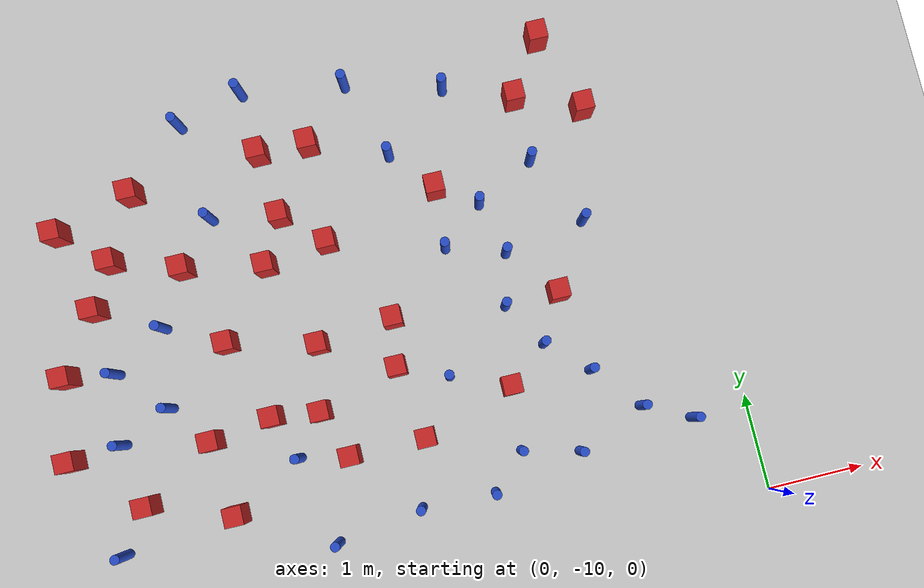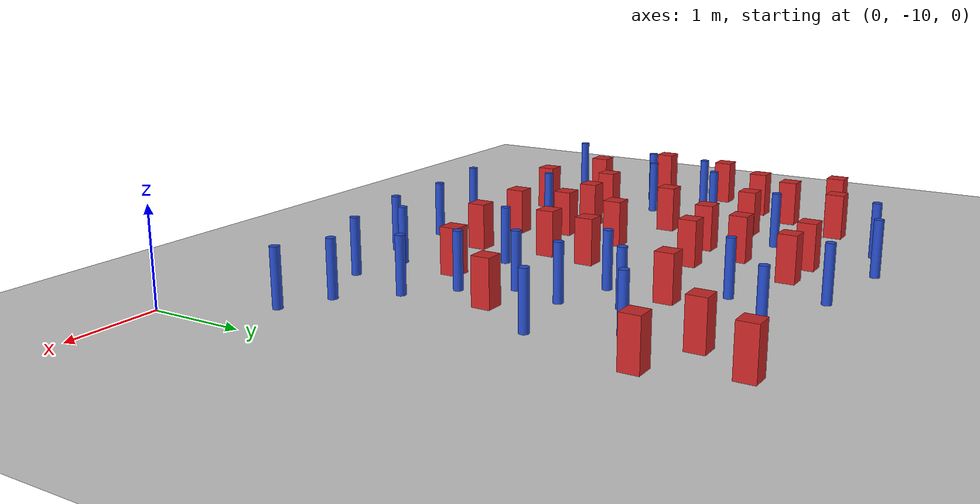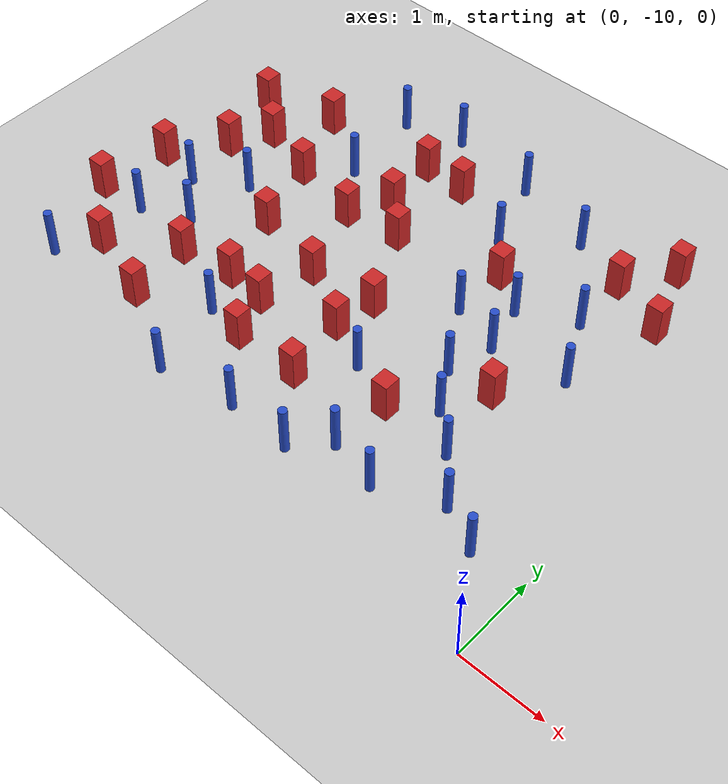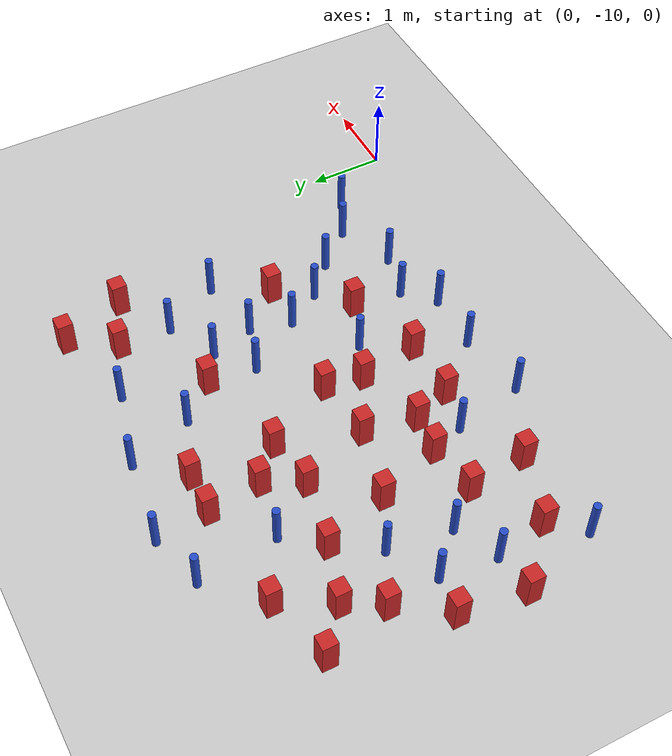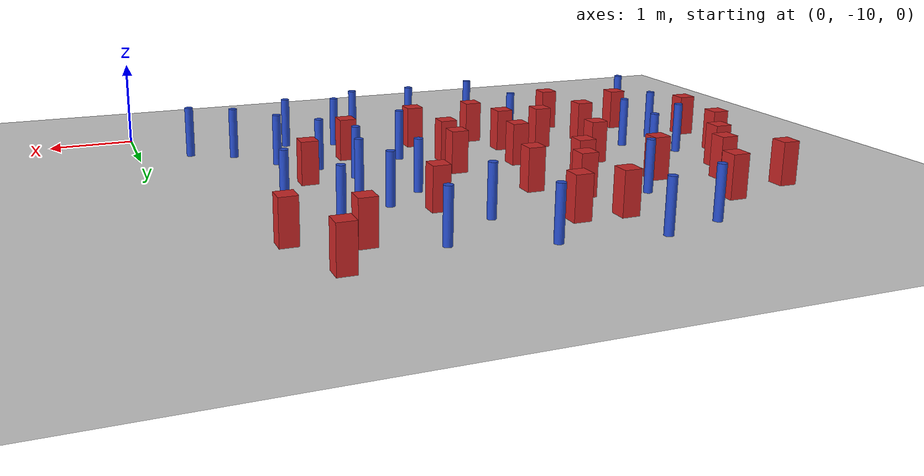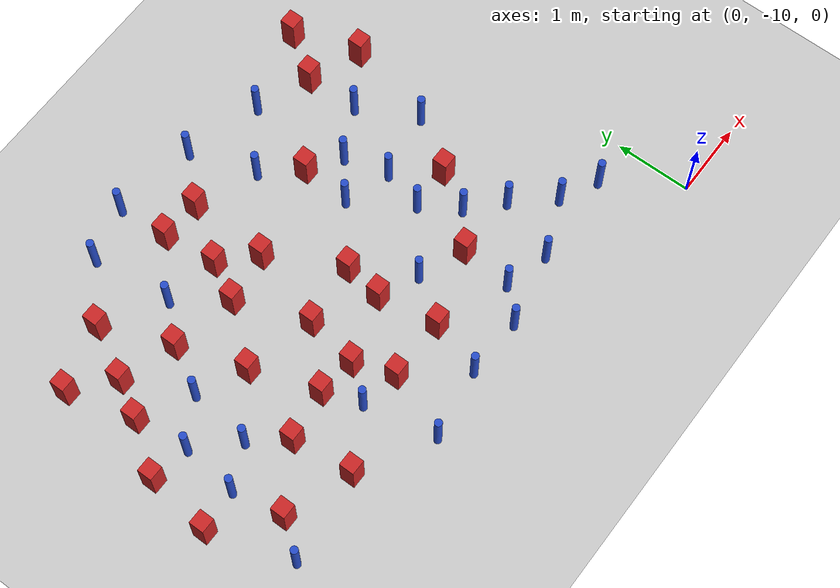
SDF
<sdf version="1.6">
 <world name="default">
  <model name="ground_plane">
   <static>1</static>
   <link name="link">
    <collision name="collision">
     <geometry><plane><normal>0 0 1</normal><size>100 100</size></plane></geometry>
     <surface><friction><ode><mu>100</mu><mu2>50</mu2></ode></friction></surface>
    </collision>
    <visual name="visual">
     <cast_shadows>0</cast_shadows>
     <geometry><plane><normal>0 0 1</normal><size>100 100</size></plane></geometry>
     <material>
      <ambient>1.0 1.0 1.0 1.0</ambient>
      <diffuse>0.8 0.8 0.8 1.0</diffuse>
      <specular>0.01 0.01 0.01 1.000000</specular>
     </material>
    </visual>
   </link>
  </model>
  <model name="square_post_obstacle3">
   <static>true</static>
   <pose>-6.42343471984 -6.54299542889 -6.11067671241e-07 -5.50515727128e-06 -8.79689657224e-07 2.37013304536e-05</pose>
   <link name="link">
    <pose>0 0 0.25 0 -0 0</pose>
    <inertial>
     <mass>100</mass>
     <inertia>
      <ixx>0.166667</ixx>
      <ixy>0</ixy>
      <ixz>0</ixz>
      <iyy>0.166667</iyy>
      <iyz>0</iyz>
      <izz>0.166667</izz>
     </inertia>
    </inertial>
    <collision name="collision"><geometry><box><size>.2 .2 .5</size></box></geometry></collision>
    <visual name="visual">
     <geometry><box><size>.2 .2 .5</size></box></geometry>
     <material>
      <script><name>Gazebo/Red</name><uri>file://media/materials/scripts/gazebo.material</uri></script>
     </material>
    </visual>
   </link>
  </model>
  <model name="square_post_obstacle7">
   <static>true</static>
   <pose>-5.79598033326 -5.42429166378 -6.11067671241e-07 -5.50515727128e-06 -8.79689657224e-07 2.37013304536e-05</pose>
   <link name="link">
    <pose>0 0 0.25 0 -0 0</pose>
    <inertial>
     <mass>100</mass>
     <inertia>
      <ixx>0.166667</ixx>
      <ixy>0</ixy>
      <ixz>0</ixz>
      <iyy>0.166667</iyy>
      <iyz>0</iyz>
      <izz>0.166667</izz>
     </inertia>
    </inertial>
    <collision name="collision"><geometry><box><size>.2 .2 .5</size></box></geometry></collision>
    <visual name="visual">
     <geometry><box><size>.2 .2 .5</size></box></geometry>
     <material>
      <script><name>Gazebo/Red</name><uri>file://media/materials/scripts/gazebo.material</uri></script>
     </material>
    </visual>
   </link>
  </model>
  <model name="pole_obstacle14">
   <static>true</static>
   <pose>-4.44330993948 -4.62836836201 -9.47619616065e-06 5.49618799737e-07 2.36310414037e-07 -1.55090534814e-07</pose>
   <link name="link">
    <pose>0 0 0.3 0 -0 0</pose>
    <inertial>
     <mass>1</mass>
     <inertia><ixx>0.145833</ixx><ixy>0</ixy><ixz>0</ixz><iyy>0.145833</iyy><iyz>0</iyz><izz>0.125</izz></inertia>
    </inertial>
    <collision name="collision">
     <geometry><cylinder><radius>0.05</radius><length>.6</length></cylinder></geometry>
    </collision>
    <visual name="visual">
     <geometry><cylinder><radius>0.05</radius><length>.6</length></cylinder></geometry>
     <material>
      <script><name>Gazebo/Blue</name><uri>file://media/materials/scripts/gazebo.material</uri></script>
     </material>
    </visual>
   </link>
  </model>
  <model name="square_post_obstacle24">
   <static>true</static>
   <pose>-3.35751620993 -8.64135356805 -6.11067671241e-07 -5.50515727128e-06 -8.79689657224e-07 2.37013304536e-05</pose>
   <link name="link">
    <pose>0 0 0.25 0 -0 0</pose>
    <inertial>
     <mass>100</mass>
     <inertia>
      <ixx>0.166667</ixx>
      <ixy>0</ixy>
      <ixz>0</ixz>
      <iyy>0.166667</iyy>
      <iyz>0</iyz>
      <izz>0.166667</izz>
     </inertia>
    </inertial>
    <collision name="collision"><geometry><box><size>.2 .2 .5</size></box></geometry></collision>
    <visual name="visual">
     <geometry><box><size>.2 .2 .5</size></box></geometry>
     <material>
      <script><name>Gazebo/Red</name><uri>file://media/materials/scripts/gazebo.material</uri></script>
     </material>
    </visual>
   </link>
  </model>
  <model name="square_post_obstacle26">
   <static>true</static>
   <pose>-2.37071512774 -8.32471719427 -6.11067671241e-07 -5.50515727128e-06 -8.79689657224e-07 2.37013304536e-05</pose>
   <link name="link">
    <pose>0 0 0.25 0 -0 0</pose>
    <inertial>
     <mass>100</mass>
     <inertia>
      <ixx>0.166667</ixx>
      <ixy>0</ixy>
      <ixz>0</ixz>
      <iyy>0.166667</iyy>
      <iyz>0</iyz>
      <izz>0.166667</izz>
     </inertia>
    </inertial>
    <collision name="collision"><geometry><box><size>.2 .2 .5</size></box></geometry></collision>
    <visual name="visual">
     <geometry><box><size>.2 .2 .5</size></box></geometry>
     <material>
      <script><name>Gazebo/Red</name><uri>file://media/materials/scripts/gazebo.material</uri></script>
     </material>
    </visual>
   </link>
  </model>
  <model name="square_post_obstacle30">
   <static>true</static>
   <pose>-5.42723711147 -8.95654916491 -6.11067671241e-07 -5.50515727128e-06 -8.79689657224e-07 2.37013304536e-05</pose>
   <link name="link">
    <pose>0 0 0.25 0 -0 0</pose>
    <inertial>
     <mass>100</mass>
     <inertia>
      <ixx>0.166667</ixx>
      <ixy>0</ixy>
      <ixz>0</ixz>
      <iyy>0.166667</iyy>
      <iyz>0</iyz>
      <izz>0.166667</izz>
     </inertia>
    </inertial>
    <collision name="collision"><geometry><box><size>.2 .2 .5</size></box></geometry></collision>
    <visual name="visual">
     <geometry><box><size>.2 .2 .5</size></box></geometry>
     <material>
      <script><name>Gazebo/Red</name><uri>file://media/materials/scripts/gazebo.material</uri></script>
     </material>
    </visual>
   </link>
  </model>
  <model name="pole_obstacle30">
   <static>true</static>
   <pose>-2.78702431136 -9.36228943971 -9.4761961606e-06 5.49618799729e-07 2.36310414e-07 -1.55090534824e-07</pose>
   <link name="link">
    <pose>0 0 0.3 0 -0 0</pose>
    <inertial>
     <mass>1</mass>
     <inertia><ixx>0.145833</ixx><ixy>0</ixy><ixz>0</ixz><iyy>0.145833</iyy><iyz>0</iyz><izz>0.125</izz></inertia>
    </inertial>
    <collision name="collision">
     <geometry><cylinder><radius>0.05</radius><length>.6</length></cylinder></geometry>
    </collision>
    <visual name="visual">
     <geometry><cylinder><radius>0.05</radius><length>.6</length></cylinder></geometry>
     <material>
      <script><name>Gazebo/Blue</name><uri>file://media/materials/scripts/gazebo.material</uri></script>
     </material>
    </visual>
   </link>
  </model>
  <model name="square_post_obstacle41">
   <static>true</static>
   <pose>-3.41148480811 -7.34854300084 -6.11067671241e-07 -5.50515727128e-06 -8.79689657224e-07 2.37013304536e-05</pose>
   <link name="link">
    <pose>0 0 0.25 0 -0 0</pose>
    <inertial>
     <mass>100</mass>
     <inertia>
      <ixx>0.166667</ixx>
      <ixy>0</ixy>
      <ixz>0</ixz>
      <iyy>0.166667</iyy>
      <iyz>0</iyz>
      <izz>0.166667</izz>
     </inertia>
    </inertial>
    <collision name="collision"><geometry><box><size>.2 .2 .5</size></box></geometry></collision>
    <visual name="visual">
     <geometry><box><size>.2 .2 .5</size></box></geometry>
     <material>
      <script><name>Gazebo/Red</name><uri>file://media/materials/scripts/gazebo.material</uri></script>
     </material>
    </visual>
   </link>
  </model>
  <model name="square_post_obstacle45">
   <static>true</static>
   <pose>-4.57825544533 -6.49774612233 -6.11067671241e-07 -5.50515727128e-06 -8.79689657224e-07 2.37013304536e-05</pose>
   <link name="link">
    <pose>0 0 0.25 0 -0 0</pose>
    <inertial>
     <mass>100</mass>
     <inertia>
      <ixx>0.166667</ixx>
      <ixy>0</ixy>
      <ixz>0</ixz>
      <iyy>0.166667</iyy>
      <iyz>0</iyz>
      <izz>0.166667</izz>
     </inertia>
    </inertial>
    <collision name="collision"><geometry><box><size>.2 .2 .5</size></box></geometry></collision>
    <visual name="visual">
     <geometry><box><size>.2 .2 .5</size></box></geometry>
     <material>
      <script><name>Gazebo/Red</name><uri>file://media/materials/scripts/gazebo.material</uri></script>
     </material>
    </visual>
   </link>
  </model>
  <model name="square_post_obstacle47">
   <static>true</static>
   <pose>-6.64714627059 -5.6617520474 -6.11067671241e-07 -5.50515727128e-06 -8.79689657224e-07 2.37013304536e-05</pose>
   <link name="link">
    <pose>0 0 0.25 0 -0 0</pose>
    <inertial>
     <mass>100</mass>
     <inertia>
      <ixx>0.166667</ixx>
      <ixy>0</ixy>
      <ixz>0</ixz>
      <iyy>0.166667</iyy>
      <iyz>0</iyz>
      <izz>0.166667</izz>
     </inertia>
    </inertial>
    <collision name="collision"><geometry><box><size>.2 .2 .5</size></box></geometry></collision>
    <visual name="visual">
     <geometry><box><size>.2 .2 .5</size></box></geometry>
     <material>
      <script><name>Gazebo/Red</name><uri>file://media/materials/scripts/gazebo.material</uri></script>
     </material>
    </visual>
   </link>
  </model>
  <model name="pole_obstacle50">
   <static>true</static>
   <pose>-4.47746352793 -9.48116316377 -9.47619616065e-06 5.49618799737e-07 2.36310414065e-07 -1.55090534796e-07</pose>
   <link name="link">
    <pose>0 0 0.3 0 -0 0</pose>
    <inertial>
     <mass>1</mass>
     <inertia><ixx>0.145833</ixx><ixy>0</ixy><ixz>0</ixz><iyy>0.145833</iyy><iyz>0</iyz><izz>0.125</izz></inertia>
    </inertial>
    <collision name="collision">
     <geometry><cylinder><radius>0.05</radius><length>.6</length></cylinder></geometry>
    </collision>
    <visual name="visual">
     <geometry><cylinder><radius>0.05</radius><length>.6</length></cylinder></geometry>
     <material>
      <script><name>Gazebo/Blue</name><uri>file://media/materials/scripts/gazebo.material</uri></script>
     </material>
    </visual>
   </link>
  </model>
  <model name="pole_obstacle60">
   <static>true</static>
   <pose>-5.15243677566 -4.82233619926 -9.47619616065e-06 5.49618799737e-07 2.36310414037e-07 -1.55090534814e-07</pose>
   <link name="link">
    <pose>0 0 0.3 0 -0 0</pose>
    <inertial>
     <mass>1</mass>
     <inertia><ixx>0.145833</ixx><ixy>0</ixy><ixz>0</ixz><iyy>0.145833</iyy><iyz>0</iyz><izz>0.125</izz></inertia>
    </inertial>
    <collision name="collision">
     <geometry><cylinder><radius>0.05</radius><length>.6</length></cylinder></geometry>
    </collision>
    <visual name="visual">
     <geometry><cylinder><radius>0.05</radius><length>.6</length></cylinder></geometry>
     <material>
      <script><name>Gazebo/Blue</name><uri>file://media/materials/scripts/gazebo.material</uri></script>
     </material>
    </visual>
   </link>
  </model>
  <model name="square_post_obstacle62">
   <static>true</static>
   <pose>-1.6636275157 -7.48311457031 -6.11067671241e-07 -5.50515727128e-06 -8.79689657224e-07 2.37013304536e-05</pose>
   <link name="link">
    <pose>0 0 0.25 0 -0 0</pose>
    <inertial>
     <mass>100</mass>
     <inertia>
      <ixx>0.166667</ixx>
      <ixy>0</ixy>
      <ixz>0</ixz>
      <iyy>0.166667</iyy>
      <iyz>0</iyz>
      <izz>0.166667</izz>
     </inertia>
    </inertial>
    <collision name="collision"><geometry><box><size>.2 .2 .5</size></box></geometry></collision>
    <visual name="visual">
     <geometry><box><size>.2 .2 .5</size></box></geometry>
     <material>
      <script><name>Gazebo/Red</name><uri>file://media/materials/scripts/gazebo.material</uri></script>
     </material>
    </visual>
   </link>
  </model>
  <model name="square_post_obstacle66">
   <static>true</static>
   <pose>-4.85720707905 -8.062633787 -6.11067671241e-07 -5.50515727128e-06 -8.79689657224e-07 2.37013304536e-05</pose>
   <link name="link">
    <pose>0 0 0.25 0 -0 0</pose>
    <inertial>
     <mass>100</mass>
     <inertia>
      <ixx>0.166667</ixx>
      <ixy>0</ixy>
      <ixz>0</ixz>
      <iyy>0.166667</iyy>
      <iyz>0</iyz>
      <izz>0.166667</izz>
     </inertia>
    </inertial>
    <collision name="collision"><geometry><box><size>.2 .2 .5</size></box></geometry></collision>
    <visual name="visual">
     <geometry><box><size>.2 .2 .5</size></box></geometry>
     <material>
      <script><name>Gazebo/Red</name><uri>file://media/materials/scripts/gazebo.material</uri></script>
     </material>
    </visual>
   </link>
  </model>
  <model name="pole_obstacle65">
   <static>true</static>
   <pose>-1.8317469458 -9.15329894356 -9.47619616065e-06 5.49618799737e-07 2.36310414046e-07 -1.55090534809e-07</pose>
   <link name="link">
    <pose>0 0 0.3 0 -0 0</pose>
    <inertial>
     <mass>1</mass>
     <inertia><ixx>0.145833</ixx><ixy>0</ixy><ixz>0</ixz><iyy>0.145833</iyy><iyz>0</iyz><izz>0.125</izz></inertia>
    </inertial>
    <collision name="collision">
     <geometry><cylinder><radius>0.05</radius><length>.6</length></cylinder></geometry>
    </collision>
    <visual name="visual">
     <geometry><cylinder><radius>0.05</radius><length>.6</length></cylinder></geometry>
     <material>
      <script><name>Gazebo/Blue</name><uri>file://media/materials/scripts/gazebo.material</uri></script>
     </material>
    </visual>
   </link>
  </model>
  <model name="square_post_obstacle75">
   <static>true</static>
   <pose>-2.66557174841 -6.10793624405 -6.11067671241e-07 -5.50515727128e-06 -8.79689657224e-07 2.37013304536e-05</pose>
   <link name="link">
    <pose>0 0 0.25 0 -0 0</pose>
    <inertial>
     <mass>100</mass>
     <inertia>
      <ixx>0.166667</ixx>
      <ixy>0</ixy>
      <ixz>0</ixz>
      <iyy>0.166667</iyy>
      <iyz>0</iyz>
      <izz>0.166667</izz>
     </inertia>
    </inertial>
    <collision name="collision"><geometry><box><size>.2 .2 .5</size></box></geometry></collision>
    <visual name="visual">
     <geometry><box><size>.2 .2 .5</size></box></geometry>
     <material>
      <script><name>Gazebo/Red</name><uri>file://media/materials/scripts/gazebo.material</uri></script>
     </material>
    </visual>
   </link>
  </model>
  <model name="pole_obstacle74">
   <static>true</static>
   <pose>-2.97260589423 -8.08191538285 -9.4761961606e-06 5.49618799729e-07 2.36310414e-07 -1.55090534824e-07</pose>
   <link name="link">
    <pose>0 0 0.3 0 -0 0</pose>
    <inertial>
     <mass>1</mass>
     <inertia><ixx>0.145833</ixx><ixy>0</ixy><ixz>0</ixz><iyy>0.145833</iyy><iyz>0</iyz><izz>0.125</izz></inertia>
    </inertial>
    <collision name="collision">
     <geometry><cylinder><radius>0.05</radius><length>.6</length></cylinder></geometry>
    </collision>
    <visual name="visual">
     <geometry><cylinder><radius>0.05</radius><length>.6</length></cylinder></geometry>
     <material>
      <script><name>Gazebo/Blue</name><uri>file://media/materials/scripts/gazebo.material</uri></script>
     </material>
    </visual>
   </link>
  </model>
  <model name="square_post_obstacle79">
   <static>true</static>
   <pose>-4.35578400422 -8.12528572244 -6.11067671241e-07 -5.50515727128e-06 -8.79689657224e-07 2.37013304536e-05</pose>
   <link name="link">
    <pose>0 0 0.25 0 -0 0</pose>
    <inertial>
     <mass>100</mass>
     <inertia>
      <ixx>0.166667</ixx>
      <ixy>0</ixy>
      <ixz>0</ixz>
      <iyy>0.166667</iyy>
      <iyz>0</iyz>
      <izz>0.166667</izz>
     </inertia>
    </inertial>
    <collision name="collision"><geometry><box><size>.2 .2 .5</size></box></geometry></collision>
    <visual name="visual">
     <geometry><box><size>.2 .2 .5</size></box></geometry>
     <material>
      <script><name>Gazebo/Red</name><uri>file://media/materials/scripts/gazebo.material</uri></script>
     </material>
    </visual>
   </link>
  </model>
  <model name="pole_obstacle81">
   <static>true</static>
   <pose>-3.34647799683 -4.79347689683 -9.47619616065e-06 5.49618799738e-07 2.3631041406e-07 -1.55090534801e-07</pose>
   <link name="link">
    <pose>0 0 0.3 0 -0 0</pose>
    <inertial>
     <mass>1</mass>
     <inertia><ixx>0.145833</ixx><ixy>0</ixy><ixz>0</ixz><iyy>0.145833</iyy><iyz>0</iyz><izz>0.125</izz></inertia>
    </inertial>
    <collision name="collision">
     <geometry><cylinder><radius>0.05</radius><length>.6</length></cylinder></geometry>
    </collision>
    <visual name="visual">
     <geometry><cylinder><radius>0.05</radius><length>.6</length></cylinder></geometry>
     <material>
      <script><name>Gazebo/Blue</name><uri>file://media/materials/scripts/gazebo.material</uri></script>
     </material>
    </visual>
   </link>
  </model>
  <model name="pole_obstacle83">
   <static>true</static>
   <pose>-6.43121102244 -7.98268152221 -9.47619616065e-06 5.49618799738e-07 2.36310414051e-07 -1.55090534804e-07</pose>
   <link name="link">
    <pose>0 0 0.3 0 -0 0</pose>
    <inertial>
     <mass>1</mass>
     <inertia><ixx>0.145833</ixx><ixy>0</ixy><ixz>0</ixz><iyy>0.145833</iyy><iyz>0</iyz><izz>0.125</izz></inertia>
    </inertial>
    <collision name="collision">
     <geometry><cylinder><radius>0.05</radius><length>.6</length></cylinder></geometry>
    </collision>
    <visual name="visual">
     <geometry><cylinder><radius>0.05</radius><length>.6</length></cylinder></geometry>
     <material>
      <script><name>Gazebo/Blue</name><uri>file://media/materials/scripts/gazebo.material</uri></script>
     </material>
    </visual>
   </link>
  </model>
  <model name="pole_obstacle100">
   <static>true</static>
   <pose>-3.56388372258 -9.33674085792 -9.4761961606e-06 5.49618799729e-07 2.36310414e-07 -1.55090534824e-07</pose>
   <link name="link">
    <pose>0 0 0.3 0 -0 0</pose>
    <inertial>
     <mass>1</mass>
     <inertia><ixx>0.145833</ixx><ixy>0</ixy><ixz>0</ixz><iyy>0.145833</iyy><iyz>0</iyz><izz>0.125</izz></inertia>
    </inertial>
    <collision name="collision">
     <geometry><cylinder><radius>0.05</radius><length>.6</length></cylinder></geometry>
    </collision>
    <visual name="visual">
     <geometry><cylinder><radius>0.05</radius><length>.6</length></cylinder></geometry>
     <material>
      <script><name>Gazebo/Blue</name><uri>file://media/materials/scripts/gazebo.material</uri></script>
     </material>
    </visual>
   </link>
  </model>
  <model name="square_post_obstacle90">
   <static>true</static>
   <pose>-5.15352704751 -7.19924133845 -6.11067671241e-07 -5.50515727128e-06 -8.79689657224e-07 2.37013304536e-05</pose>
   <link name="link">
    <pose>0 0 0.25 0 -0 0</pose>
    <inertial>
     <mass>100</mass>
     <inertia>
      <ixx>0.166667</ixx>
      <ixy>0</ixy>
      <ixz>0</ixz>
      <iyy>0.166667</iyy>
      <iyz>0</iyz>
      <izz>0.166667</izz>
     </inertia>
    </inertial>
    <collision name="collision"><geometry><box><size>.2 .2 .5</size></box></geometry></collision>
    <visual name="visual">
     <geometry><box><size>.2 .2 .5</size></box></geometry>
     <material>
      <script><name>Gazebo/Red</name><uri>file://media/materials/scripts/gazebo.material</uri></script>
     </material>
    </visual>
   </link>
  </model>
  <model name="pole_obstacle104">
   <static>true</static>
   <pose>-2.22948369773 -7.49947539084 -9.47619616065e-06 5.49618799738e-07 2.3631041406e-07 -1.55090534801e-07</pose>
   <link name="link">
    <pose>0 0 0.3 0 -0 0</pose>
    <inertial>
     <mass>1</mass>
     <inertia><ixx>0.145833</ixx><ixy>0</ixy><ixz>0</ixz><iyy>0.145833</iyy><iyz>0</iyz><izz>0.125</izz></inertia>
    </inertial>
    <collision name="collision">
     <geometry><cylinder><radius>0.05</radius><length>.6</length></cylinder></geometry>
    </collision>
    <visual name="visual">
     <geometry><cylinder><radius>0.05</radius><length>.6</length></cylinder></geometry>
     <material>
      <script><name>Gazebo/Blue</name><uri>file://media/materials/scripts/gazebo.material</uri></script>
     </material>
    </visual>
   </link>
  </model>
  <model name="pole_obstacle107">
   <static>true</static>
   <pose>-1.60872477225 -6.05113349759 -9.47619616065e-06 5.49618799737e-07 2.36310414061e-07 -1.550905348e-07</pose>
   <link name="link">
    <pose>0 0 0.3 0 -0 0</pose>
    <inertial>
     <mass>1</mass>
     <inertia><ixx>0.145833</ixx><ixy>0</ixy><ixz>0</ixz><iyy>0.145833</iyy><iyz>0</iyz><izz>0.125</izz></inertia>
    </inertial>
    <collision name="collision">
     <geometry><cylinder><radius>0.05</radius><length>.6</length></cylinder></geometry>
    </collision>
    <visual name="visual">
     <geometry><cylinder><radius>0.05</radius><length>.6</length></cylinder></geometry>
     <material>
      <script><name>Gazebo/Blue</name><uri>file://media/materials/scripts/gazebo.material</uri></script>
     </material>
    </visual>
   </link>
  </model>
  <model name="square_post_obstacle97">
   <static>true</static>
   <pose>-3.86253564968 -5.33478705394 -6.11067671241e-07 -5.50515727128e-06 -8.79689657224e-07 2.37013304536e-05</pose>
   <link name="link">
    <pose>0 0 0.25 0 -0 0</pose>
    <inertial>
     <mass>100</mass>
     <inertia>
      <ixx>0.166667</ixx>
      <ixy>0</ixy>
      <ixz>0</ixz>
      <iyy>0.166667</iyy>
      <iyz>0</iyz>
      <izz>0.166667</izz>
     </inertia>
    </inertial>
    <collision name="collision"><geometry><box><size>.2 .2 .5</size></box></geometry></collision>
    <visual name="visual">
     <geometry><box><size>.2 .2 .5</size></box></geometry>
     <material>
      <script><name>Gazebo/Red</name><uri>file://media/materials/scripts/gazebo.material</uri></script>
     </material>
    </visual>
   </link>
  </model>
  <model name="pole_obstacle110">
   <static>true</static>
   <pose>-2.33730457801 -5.07482713821 -9.47619616065e-06 5.49618799738e-07 2.3631041406e-07 -1.55090534801e-07</pose>
   <link name="link">
    <pose>0 0 0.3 0 -0 0</pose>
    <inertial>
     <mass>1</mass>
     <inertia><ixx>0.145833</ixx><ixy>0</ixy><ixz>0</ixz><iyy>0.145833</iyy><iyz>0</iyz><izz>0.125</izz></inertia>
    </inertial>
    <collision name="collision">
     <geometry><cylinder><radius>0.05</radius><length>.6</length></cylinder></geometry>
    </collision>
    <visual name="visual">
     <geometry><cylinder><radius>0.05</radius><length>.6</length></cylinder></geometry>
     <material>
      <script><name>Gazebo/Blue</name><uri>file://media/materials/scripts/gazebo.material</uri></script>
     </material>
    </visual>
   </link>
  </model>
  <model name="square_post_obstacle100">
   <static>true</static>
   <pose>-6.85805815813 -7.16800190108 -6.11067671241e-07 -5.50515727128e-06 -8.79689657224e-07 2.37013304536e-05</pose>
   <link name="link">
    <pose>0 0 0.25 0 -0 0</pose>
    <inertial>
     <mass>100</mass>
     <inertia>
      <ixx>0.166667</ixx>
      <ixy>0</ixy>
      <ixz>0</ixz>
      <iyy>0.166667</iyy>
      <iyz>0</iyz>
      <izz>0.166667</izz>
     </inertia>
    </inertial>
    <collision name="collision"><geometry><box><size>.2 .2 .5</size></box></geometry></collision>
    <visual name="visual">
     <geometry><box><size>.2 .2 .5</size></box></geometry>
     <material>
      <script><name>Gazebo/Red</name><uri>file://media/materials/scripts/gazebo.material</uri></script>
     </material>
    </visual>
   </link>
  </model>
  <model name="pole_obstacle116">
   <static>true</static>
   <pose>-2.24359272322 -6.37842289494 -9.47619616065e-06 5.49618799738e-07 2.3631041406e-07 -1.55090534801e-07</pose>
   <link name="link">
    <pose>0 0 0.3 0 -0 0</pose>
    <inertial>
     <mass>1</mass>
     <inertia><ixx>0.145833</ixx><ixy>0</ixy><ixz>0</ixz><iyy>0.145833</iyy><iyz>0</iyz><izz>0.125</izz></inertia>
    </inertial>
    <collision name="collision">
     <geometry><cylinder><radius>0.05</radius><length>.6</length></cylinder></geometry>
    </collision>
    <visual name="visual">
     <geometry><cylinder><radius>0.05</radius><length>.6</length></cylinder></geometry>
     <material>
      <script><name>Gazebo/Blue</name><uri>file://media/materials/scripts/gazebo.material</uri></script>
     </material>
    </visual>
   </link>
  </model>
  <model name="square_post_obstacle109">
   <static>true</static>
   <pose>-0.944326604908 -5.62837113153 -6.11067671241e-07 -5.50515727128e-06 -8.79689657224e-07 2.37013304536e-05</pose>
   <link name="link">
    <pose>0 0 0.25 0 -0 0</pose>
    <inertial>
     <mass>100</mass>
     <inertia>
      <ixx>0.166667</ixx>
      <ixy>0</ixy>
      <ixz>0</ixz>
      <iyy>0.166667</iyy>
      <iyz>0</iyz>
      <izz>0.166667</izz>
     </inertia>
    </inertial>
    <collision name="collision"><geometry><box><size>.2 .2 .5</size></box></geometry></collision>
    <visual name="visual">
     <geometry><box><size>.2 .2 .5</size></box></geometry>
     <material>
      <script><name>Gazebo/Red</name><uri>file://media/materials/scripts/gazebo.material</uri></script>
     </material>
    </visual>
   </link>
  </model>
  <model name="pole_obstacle125">
   <static>true</static>
   <pose>-3.05708195805 -5.64644814625 -9.47619616065e-06 5.49618799738e-07 2.3631041406e-07 -1.55090534801e-07</pose>
   <link name="link">
    <pose>0 0 0.3 0 -0 0</pose>
    <inertial>
     <mass>1</mass>
     <inertia><ixx>0.145833</ixx><ixy>0</ixy><ixz>0</ixz><iyy>0.145833</iyy><iyz>0</iyz><izz>0.125</izz></inertia>
    </inertial>
    <collision name="collision">
     <geometry><cylinder><radius>0.05</radius><length>.6</length></cylinder></geometry>
    </collision>
    <visual name="visual">
     <geometry><cylinder><radius>0.05</radius><length>.6</length></cylinder></geometry>
     <material>
      <script><name>Gazebo/Blue</name><uri>file://media/materials/scripts/gazebo.material</uri></script>
     </material>
    </visual>
   </link>
  </model>
  <model name="pole_obstacle128">
   <static>true</static>
   <pose>-5.8767830122 -7.72395094921 -9.47619616065e-06 5.49618799737e-07 2.36310414037e-07 -1.55090534814e-07</pose>
   <link name="link">
    <pose>0 0 0.3 0 -0 0</pose>
    <inertial>
     <mass>1</mass>
     <inertia><ixx>0.145833</ixx><ixy>0</ixy><ixz>0</ixz><iyy>0.145833</iyy><iyz>0</iyz><izz>0.125</izz></inertia>
    </inertial>
    <collision name="collision">
     <geometry><cylinder><radius>0.05</radius><length>.6</length></cylinder></geometry>
    </collision>
    <visual name="visual">
     <geometry><cylinder><radius>0.05</radius><length>.6</length></cylinder></geometry>
     <material>
      <script><name>Gazebo/Blue</name><uri>file://media/materials/scripts/gazebo.material</uri></script>
     </material>
    </visual>
   </link>
  </model>
  <model name="pole_obstacle129">
   <static>true</static>
   <pose>-2.70145617167 -6.75447308797 -9.47619616065e-06 5.49618799738e-07 2.3631041406e-07 -1.55090534801e-07</pose>
   <link name="link">
    <pose>0 0 0.3 0 -0 0</pose>
    <inertial>
     <mass>1</mass>
     <inertia><ixx>0.145833</ixx><ixy>0</ixy><ixz>0</ixz><iyy>0.145833</iyy><iyz>0</iyz><izz>0.125</izz></inertia>
    </inertial>
    <collision name="collision">
     <geometry><cylinder><radius>0.05</radius><length>.6</length></cylinder></geometry>
    </collision>
    <visual name="visual">
     <geometry><cylinder><radius>0.05</radius><length>.6</length></cylinder></geometry>
     <material>
      <script><name>Gazebo/Blue</name><uri>file://media/materials/scripts/gazebo.material</uri></script>
     </material>
    </visual>
   </link>
  </model>
  <model name="square_post_obstacle126">
   <static>true</static>
   <pose>-5.43676694694 -6.3227402749 -6.11067671241e-07 -5.50515727128e-06 -8.79689657224e-07 2.37013304536e-05</pose>
   <link name="link">
    <pose>0 0 0.25 0 -0 0</pose>
    <inertial>
     <mass>100</mass>
     <inertia>
      <ixx>0.166667</ixx>
      <ixy>0</ixy>
      <ixz>0</ixz>
      <iyy>0.166667</iyy>
      <iyz>0</iyz>
      <izz>0.166667</izz>
     </inertia>
    </inertial>
    <collision name="collision"><geometry><box><size>.2 .2 .5</size></box></geometry></collision>
    <visual name="visual">
     <geometry><box><size>.2 .2 .5</size></box></geometry>
     <material>
      <script><name>Gazebo/Red</name><uri>file://media/materials/scripts/gazebo.material</uri></script>
     </material>
    </visual>
   </link>
  </model>
  <model name="square_post_obstacle129">
   <static>true</static>
   <pose>-1.62560395062 -5.35600726045 -6.11067671241e-07 -5.50515727128e-06 -8.79689657224e-07 2.37013304536e-05</pose>
   <link name="link">
    <pose>0 0 0.25 0 -0 0</pose>
    <inertial>
     <mass>100</mass>
     <inertia>
      <ixx>0.166667</ixx>
      <ixy>0</ixy>
      <ixz>0</ixz>
      <iyy>0.166667</iyy>
      <iyz>0</iyz>
      <izz>0.166667</izz>
     </inertia>
    </inertial>
    <collision name="collision"><geometry><box><size>.2 .2 .5</size></box></geometry></collision>
    <visual name="visual">
     <geometry><box><size>.2 .2 .5</size></box></geometry>
     <material>
      <script><name>Gazebo/Red</name><uri>file://media/materials/scripts/gazebo.material</uri></script>
     </material>
    </visual>
   </link>
  </model>
  <model name="square_post_obstacle144">
   <static>true</static>
   <pose>-5.52018199435 -8.15978400453 -6.11067671241e-07 -5.50515727128e-06 -8.79689657224e-07 2.37013304536e-05</pose>
   <link name="link">
    <pose>0 0 0.25 0 -0 0</pose>
    <inertial>
     <mass>100</mass>
     <inertia>
      <ixx>0.166667</ixx>
      <ixy>0</ixy>
      <ixz>0</ixz>
      <iyy>0.166667</iyy>
      <iyz>0</iyz>
      <izz>0.166667</izz>
     </inertia>
    </inertial>
    <collision name="collision"><geometry><box><size>.2 .2 .5</size></box></geometry></collision>
    <visual name="visual">
     <geometry><box><size>.2 .2 .5</size></box></geometry>
     <material>
      <script><name>Gazebo/Red</name><uri>file://media/materials/scripts/gazebo.material</uri></script>
     </material>
    </visual>
   </link>
  </model>
  <model name="pole_obstacle163">
   <static>true</static>
   <pose>-0.613422236916 -9.0871298246 -9.47619616065e-06 5.49618799737e-07 2.36310414038e-07 -1.55090534813e-07</pose>
   <link name="link">
    <pose>0 0 0.3 0 -0 0</pose>
    <inertial>
     <mass>1</mass>
     <inertia><ixx>0.145833</ixx><ixy>0</ixy><ixz>0</ixz><iyy>0.145833</iyy><iyz>0</iyz><izz>0.125</izz></inertia>
    </inertial>
    <collision name="collision">
     <geometry><cylinder><radius>0.05</radius><length>.6</length></cylinder></geometry>
    </collision>
    <visual name="visual">
     <geometry><cylinder><radius>0.05</radius><length>.6</length></cylinder></geometry>
     <material>
      <script><name>Gazebo/Blue</name><uri>file://media/materials/scripts/gazebo.material</uri></script>
     </material>
    </visual>
   </link>
  </model>
  <model name="pole_obstacle165">
   <static>true</static>
   <pose>-6.34889134401 -7.24834031649 -9.47619616065e-06 5.49618799737e-07 2.36310414037e-07 -1.55090534814e-07</pose>
   <link name="link">
    <pose>0 0 0.3 0 -0 0</pose>
    <inertial>
     <mass>1</mass>
     <inertia><ixx>0.145833</ixx><ixy>0</ixy><ixz>0</ixz><iyy>0.145833</iyy><iyz>0</iyz><izz>0.125</izz></inertia>
    </inertial>
    <collision name="collision">
     <geometry><cylinder><radius>0.05</radius><length>.6</length></cylinder></geometry>
    </collision>
    <visual name="visual">
     <geometry><cylinder><radius>0.05</radius><length>.6</length></cylinder></geometry>
     <material>
      <script><name>Gazebo/Blue</name><uri>file://media/materials/scripts/gazebo.material</uri></script>
     </material>
    </visual>
   </link>
  </model>
  <model name="pole_obstacle180">
   <static>true</static>
   <pose>-1.22323062831 -6.80593250143 -9.47619616065e-06 5.49618799737e-07 2.36310414061e-07 -1.550905348e-07</pose>
   <link name="link">
    <pose>0 0 0.3 0 -0 0</pose>
    <inertial>
     <mass>1</mass>
     <inertia><ixx>0.145833</ixx><ixy>0</ixy><ixz>0</ixz><iyy>0.145833</iyy><iyz>0</iyz><izz>0.125</izz></inertia>
    </inertial>
    <collision name="collision">
     <geometry><cylinder><radius>0.05</radius><length>.6</length></cylinder></geometry>
    </collision>
    <visual name="visual">
     <geometry><cylinder><radius>0.05</radius><length>.6</length></cylinder></geometry>
     <material>
      <script><name>Gazebo/Blue</name><uri>file://media/materials/scripts/gazebo.material</uri></script>
     </material>
    </visual>
   </link>
  </model>
  <model name="square_post_obstacle170">
   <static>true</static>
   <pose>-3.48679247719 -7.85564375913 -6.11067671241e-07 -5.50515727128e-06 -8.79689657224e-07 2.37013304536e-05</pose>
   <link name="link">
    <pose>0 0 0.25 0 -0 0</pose>
    <inertial>
     <mass>100</mass>
     <inertia>
      <ixx>0.166667</ixx>
      <ixy>0</ixy>
      <ixz>0</ixz>
      <iyy>0.166667</iyy>
      <iyz>0</iyz>
      <izz>0.166667</izz>
     </inertia>
    </inertial>
    <collision name="collision"><geometry><box><size>.2 .2 .5</size></box></geometry></collision>
    <visual name="visual">
     <geometry><box><size>.2 .2 .5</size></box></geometry>
     <material>
      <script><name>Gazebo/Red</name><uri>file://media/materials/scripts/gazebo.material</uri></script>
     </material>
    </visual>
   </link>
  </model>
  <model name="pole_obstacle186">
   <static>true</static>
   <pose>-2.42516489188 -9.00295063793 -9.4761961606e-06 5.49618799729e-07 2.36310414e-07 -1.55090534824e-07</pose>
   <link name="link">
    <pose>0 0 0.3 0 -0 0</pose>
    <inertial>
     <mass>1</mass>
     <inertia><ixx>0.145833</ixx><ixy>0</ixy><ixz>0</ixz><iyy>0.145833</iyy><iyz>0</iyz><izz>0.125</izz></inertia>
    </inertial>
    <collision name="collision">
     <geometry><cylinder><radius>0.05</radius><length>.6</length></cylinder></geometry>
    </collision>
    <visual name="visual">
     <geometry><cylinder><radius>0.05</radius><length>.6</length></cylinder></geometry>
     <material>
      <script><name>Gazebo/Blue</name><uri>file://media/materials/scripts/gazebo.material</uri></script>
     </material>
    </visual>
   </link>
  </model>
  <model name="pole_obstacle187">
   <static>true</static>
   <pose>-4.68044610859 -8.54099324544 -9.47619616065e-06 5.49618799737e-07 2.36310414065e-07 -1.55090534796e-07</pose>
   <link name="link">
    <pose>0 0 0.3 0 -0 0</pose>
    <inertial>
     <mass>1</mass>
     <inertia><ixx>0.145833</ixx><ixy>0</ixy><ixz>0</ixz><iyy>0.145833</iyy><iyz>0</iyz><izz>0.125</izz></inertia>
    </inertial>
    <collision name="collision">
     <geometry><cylinder><radius>0.05</radius><length>.6</length></cylinder></geometry>
    </collision>
    <visual name="visual">
     <geometry><cylinder><radius>0.05</radius><length>.6</length></cylinder></geometry>
     <material>
      <script><name>Gazebo/Blue</name><uri>file://media/materials/scripts/gazebo.material</uri></script>
     </material>
    </visual>
   </link>
  </model>
  <model name="square_post_obstacle182">
   <static>true</static>
   <pose>-1.23640817744 -4.78052309297 -6.11067671241e-07 -5.50515727128e-06 -8.79689657224e-07 2.37013304536e-05</pose>
   <link name="link">
    <pose>0 0 0.25 0 -0 0</pose>
    <inertial>
     <mass>100</mass>
     <inertia>
      <ixx>0.166667</ixx>
      <ixy>0</ixy>
      <ixz>0</ixz>
      <iyy>0.166667</iyy>
      <iyz>0</iyz>
      <izz>0.166667</izz>
     </inertia>
    </inertial>
    <collision name="collision"><geometry><box><size>.2 .2 .5</size></box></geometry></collision>
    <visual name="visual">
     <geometry><box><size>.2 .2 .5</size></box></geometry>
     <material>
      <script><name>Gazebo/Red</name><uri>file://media/materials/scripts/gazebo.material</uri></script>
     </material>
    </visual>
   </link>
  </model>
  <model name="square_post_obstacle188">
   <static>true</static>
   <pose>-6.30474961234 -8.65333368273 -6.11067671241e-07 -5.50515727128e-06 -8.79689657224e-07 2.37013304536e-05</pose>
   <link name="link">
    <pose>0 0 0.25 0 -0 0</pose>
    <inertial>
     <mass>100</mass>
     <inertia>
      <ixx>0.166667</ixx>
      <ixy>0</ixy>
      <ixz>0</ixz>
      <iyy>0.166667</iyy>
      <iyz>0</iyz>
      <izz>0.166667</izz>
     </inertia>
    </inertial>
    <collision name="collision"><geometry><box><size>.2 .2 .5</size></box></geometry></collision>
    <visual name="visual">
     <geometry><box><size>.2 .2 .5</size></box></geometry>
     <material>
      <script><name>Gazebo/Red</name><uri>file://media/materials/scripts/gazebo.material</uri></script>
     </material>
    </visual>
   </link>
  </model>
  <model name="square_post_obstacle189">
   <static>true</static>
   <pose>-6.97893356307 -8.02789210077 -6.11067671241e-07 -5.50515727128e-06 -8.79689657224e-07 2.37013304536e-05</pose>
   <link name="link">
    <pose>0 0 0.25 0 -0 0</pose>
    <inertial>
     <mass>100</mass>
     <inertia>
      <ixx>0.166667</ixx>
      <ixy>0</ixy>
      <ixz>0</ixz>
      <iyy>0.166667</iyy>
      <iyz>0</iyz>
      <izz>0.166667</izz>
     </inertia>
    </inertial>
    <collision name="collision"><geometry><box><size>.2 .2 .5</size></box></geometry></collision>
    <visual name="visual">
     <geometry><box><size>.2 .2 .5</size></box></geometry>
     <material>
      <script><name>Gazebo/Red</name><uri>file://media/materials/scripts/gazebo.material</uri></script>
     </material>
    </visual>
   </link>
  </model>
  <model name="square_post_obstacle192">
   <static>true</static>
   <pose>-6.15618906197 -6.08319301037 -6.11067671241e-07 -5.50515727128e-06 -8.79689657224e-07 2.37013304536e-05</pose>
   <link name="link">
    <pose>0 0 0.25 0 -0 0</pose>
    <inertial>
     <mass>100</mass>
     <inertia>
      <ixx>0.166667</ixx>
      <ixy>0</ixy>
      <ixz>0</ixz>
      <iyy>0.166667</iyy>
      <iyz>0</iyz>
      <izz>0.166667</izz>
     </inertia>
    </inertial>
    <collision name="collision"><geometry><box><size>.2 .2 .5</size></box></geometry></collision>
    <visual name="visual">
     <geometry><box><size>.2 .2 .5</size></box></geometry>
     <material>
      <script><name>Gazebo/Red</name><uri>file://media/materials/scripts/gazebo.material</uri></script>
     </material>
    </visual>
   </link>
  </model>
  <model name="square_post_obstacle193">
   <static>true</static>
   <pose>-4.15938249944 -8.64070087253 -6.11067671241e-07 -5.50515727128e-06 -8.79689657224e-07 2.37013304536e-05</pose>
   <link name="link">
    <pose>0 0 0.25 0 -0 0</pose>
    <inertial>
     <mass>100</mass>
     <inertia>
      <ixx>0.166667</ixx>
      <ixy>0</ixy>
      <ixz>0</ixz>
      <iyy>0.166667</iyy>
      <iyz>0</iyz>
      <izz>0.166667</izz>
     </inertia>
    </inertial>
    <collision name="collision"><geometry><box><size>.2 .2 .5</size></box></geometry></collision>
    <visual name="visual">
     <geometry><box><size>.2 .2 .5</size></box></geometry>
     <material>
      <script><name>Gazebo/Red</name><uri>file://media/materials/scripts/gazebo.material</uri></script>
     </material>
    </visual>
   </link>
  </model>
  <model name="square_post_obstacle194">
   <static>true</static>
   <pose>-4.22939966038 -7.43201623645 -6.11067671241e-07 -5.50515727128e-06 -8.79689657224e-07 2.37013304536e-05</pose>
   <link name="link">
    <pose>0 0 0.25 0 -0 0</pose>
    <inertial>
     <mass>100</mass>
     <inertia>
      <ixx>0.166667</ixx>
      <ixy>0</ixy>
      <ixz>0</ixz>
      <iyy>0.166667</iyy>
      <iyz>0</iyz>
      <izz>0.166667</izz>
     </inertia>
    </inertial>
    <collision name="collision"><geometry><box><size>.2 .2 .5</size></box></geometry></collision>
    <visual name="visual">
     <geometry><box><size>.2 .2 .5</size></box></geometry>
     <material>
      <script><name>Gazebo/Red</name><uri>file://media/materials/scripts/gazebo.material</uri></script>
     </material>
    </visual>
   </link>
  </model>
  <model name="square_post_obstacle199">
   <static>true</static>
   <pose>-3.90302667228 -6.40375348367 -6.11067671241e-07 -5.50515727128e-06 -8.79689657224e-07 2.37013304536e-05</pose>
   <link name="link">
    <pose>0 0 0.25 0 -0 0</pose>
    <inertial>
     <mass>100</mass>
     <inertia>
      <ixx>0.166667</ixx>
      <ixy>0</ixy>
      <ixz>0</ixz>
      <iyy>0.166667</iyy>
      <iyz>0</iyz>
      <izz>0.166667</izz>
     </inertia>
    </inertial>
    <collision name="collision"><geometry><box><size>.2 .2 .5</size></box></geometry></collision>
    <visual name="visual">
     <geometry><box><size>.2 .2 .5</size></box></geometry>
     <material>
      <script><name>Gazebo/Red</name><uri>file://media/materials/scripts/gazebo.material</uri></script>
     </material>
    </visual>
   </link>
  </model>
  <model name="pole_obstacle190">
   <static>true</static>
   <pose>-5.03871096239 -5.87766790653 -9.47619616065e-06 5.49618799737e-07 2.36310414037e-07 -1.55090534814e-07</pose>
   <link name="link">
    <pose>0 0 0.3 0 -0 0</pose>
    <inertial>
     <mass>1</mass>
     <inertia><ixx>0.145833</ixx><ixy>0</ixy><ixz>0</ixz><iyy>0.145833</iyy><iyz>0</iyz><izz>0.125</izz></inertia>
    </inertial>
    <collision name="collision">
     <geometry><cylinder><radius>0.05</radius><length>.6</length></cylinder></geometry>
    </collision>
    <visual name="visual">
     <geometry><cylinder><radius>0.05</radius><length>.6</length></cylinder></geometry>
     <material>
      <script><name>Gazebo/Blue</name><uri>file://media/materials/scripts/gazebo.material</uri></script>
     </material>
    </visual>
   </link>
  </model>
  <model name="pole_obstacle192">
   <static>true</static>
   <pose>-1.52616929393 -8.35670472668 -9.47619616065e-06 5.49618799737e-07 2.36310414046e-07 -1.55090534809e-07</pose>
   <link name="link">
    <pose>0 0 0.3 0 -0 0</pose>
    <inertial>
     <mass>1</mass>
     <inertia><ixx>0.145833</ixx><ixy>0</ixy><ixz>0</ixz><iyy>0.145833</iyy><iyz>0</iyz><izz>0.125</izz></inertia>
    </inertial>
    <collision name="collision">
     <geometry><cylinder><radius>0.05</radius><length>.6</length></cylinder></geometry>
    </collision>
    <visual name="visual">
     <geometry><cylinder><radius>0.05</radius><length>.6</length></cylinder></geometry>
     <material>
      <script><name>Gazebo/Blue</name><uri>file://media/materials/scripts/gazebo.material</uri></script>
     </material>
    </visual>
   </link>
  </model>
  <model name="pole_obstacle197">
   <static>true</static>
   <pose>-5.76598621724 -6.89303385639 -9.47619616065e-06 5.49618799737e-07 2.36310414037e-07 -1.55090534814e-07</pose>
   <link name="link">
    <pose>0 0 0.3 0 -0 0</pose>
    <inertial>
     <mass>1</mass>
     <inertia><ixx>0.145833</ixx><ixy>0</ixy><ixz>0</ixz><iyy>0.145833</iyy><iyz>0</iyz><izz>0.125</izz></inertia>
    </inertial>
    <collision name="collision">
     <geometry><cylinder><radius>0.05</radius><length>.6</length></cylinder></geometry>
    </collision>
    <visual name="visual">
     <geometry><cylinder><radius>0.05</radius><length>.6</length></cylinder></geometry>
     <material>
      <script><name>Gazebo/Blue</name><uri>file://media/materials/scripts/gazebo.material</uri></script>
     </material>
    </visual>
   </link>
  </model>
  <model name="pole_obstacle198">
   <static>true</static>
   <pose>-1.10242931349 -8.84334293635 -9.47619616065e-06 5.49618799737e-07 2.36310414046e-07 -1.55090534809e-07</pose>
   <link name="link">
    <pose>0 0 0.3 0 -0 0</pose>
    <inertial>
     <mass>1</mass>
     <inertia><ixx>0.145833</ixx><ixy>0</ixy><ixz>0</ixz><iyy>0.145833</iyy><iyz>0</iyz><izz>0.125</izz></inertia>
    </inertial>
    <collision name="collision">
     <geometry><cylinder><radius>0.05</radius><length>.6</length></cylinder></geometry>
    </collision>
    <visual name="visual">
     <geometry><cylinder><radius>0.05</radius><length>.6</length></cylinder></geometry>
     <material>
      <script><name>Gazebo/Blue</name><uri>file://media/materials/scripts/gazebo.material</uri></script>
     </material>
    </visual>
   </link>
  </model>
  <model name="pole_obstacle209">
   <static>true</static>
   <pose>-1.93559480108 -7.97726243198 -9.47619616065e-06 5.49618799737e-07 2.36310414053e-07 -1.55090534804e-07</pose>
   <link name="link">
    <pose>0 0 0.3 0 -0 0</pose>
    <inertial>
     <mass>1</mass>
     <inertia><ixx>0.145833</ixx><ixy>0</ixy><ixz>0</ixz><iyy>0.145833</iyy><iyz>0</iyz><izz>0.125</izz></inertia>
    </inertial>
    <collision name="collision">
     <geometry><cylinder><radius>0.05</radius><length>.6</length></cylinder></geometry>
    </collision>
    <visual name="visual">
     <geometry><cylinder><radius>0.05</radius><length>.6</length></cylinder></geometry>
     <material>
      <script><name>Gazebo/Blue</name><uri>file://media/materials/scripts/gazebo.material</uri></script>
     </material>
    </visual>
   </link>
  </model>
  <model name="pole_obstacle211">
   <static>true</static>
   <pose>-2.09144648326 -6.95543425555 -9.47619616065e-06 5.49618799738e-07 2.3631041406e-07 -1.55090534801e-07</pose>
   <link name="link">
    <pose>0 0 0.3 0 -0 0</pose>
    <inertial>
     <mass>1</mass>
     <inertia><ixx>0.145833</ixx><ixy>0</ixy><ixz>0</ixz><iyy>0.145833</iyy><iyz>0</iyz><izz>0.125</izz></inertia>
    </inertial>
    <collision name="collision">
     <geometry><cylinder><radius>0.05</radius><length>.6</length></cylinder></geometry>
    </collision>
    <visual name="visual">
     <geometry><cylinder><radius>0.05</radius><length>.6</length></cylinder></geometry>
     <material>
      <script><name>Gazebo/Blue</name><uri>file://media/materials/scripts/gazebo.material</uri></script>
     </material>
    </visual>
   </link>
  </model>
  <model name="pole_obstacle218">
   <static>true</static>
   <pose>-6.63659408483 -9.09028841404 -9.47619616065e-06 5.49618799737e-07 2.36310414065e-07 -1.55090534796e-07</pose>
   <link name="link">
    <pose>0 0 0.3 0 -0 0</pose>
    <inertial>
     <mass>1</mass>
     <inertia><ixx>0.145833</ixx><ixy>0</ixy><ixz>0</ixz><iyy>0.145833</iyy><iyz>0</iyz><izz>0.125</izz></inertia>
    </inertial>
    <collision name="collision">
     <geometry><cylinder><radius>0.05</radius><length>.6</length></cylinder></geometry>
    </collision>
    <visual name="visual">
     <geometry><cylinder><radius>0.05</radius><length>.6</length></cylinder></geometry>
     <material>
      <script><name>Gazebo/Blue</name><uri>file://media/materials/scripts/gazebo.material</uri></script>
     </material>
    </visual>
   </link>
  </model>
  <model name="square_post_obstacle201">
   <static>true</static>
   <pose>-4.3214700498 -6.01172002312 -6.11067671241e-07 -5.50515727128e-06 -8.79689657224e-07 2.37013304536e-05</pose>
   <link name="link">
    <pose>0 0 0.25 0 -0 0</pose>
    <inertial>
     <mass>100</mass>
     <inertia>
      <ixx>0.166667</ixx>
      <ixy>0</ixy>
      <ixz>0</ixz>
      <iyy>0.166667</iyy>
      <iyz>0</iyz>
      <izz>0.166667</izz>
     </inertia>
    </inertial>
    <collision name="collision"><geometry><box><size>.2 .2 .5</size></box></geometry></collision>
    <visual name="visual">
     <geometry><box><size>.2 .2 .5</size></box></geometry>
     <material>
      <script><name>Gazebo/Red</name><uri>file://media/materials/scripts/gazebo.material</uri></script>
     </material>
    </visual>
   </link>
  </model>
  <model name="square_post_obstacle210">
   <static>true</static>
   <pose>-4.4006900498 -5.30837002312 -6.11067671241e-07 -5.50515727128e-06 -8.79689657224e-07 2.37013304536e-05</pose>
   <link name="link">
    <pose>0 0 0.25 0 -0 0</pose>
    <inertial>
     <mass>100</mass>
     <inertia>
      <ixx>0.166667</ixx>
      <ixy>0</ixy>
      <ixz>0</ixz>
      <iyy>0.166667</iyy>
      <iyz>0</iyz>
      <izz>0.166667</izz>
     </inertia>
    </inertial>
    <collision name="collision"><geometry><box><size>.2 .2 .5</size></box></geometry></collision>
    <visual name="visual">
     <geometry><box><size>.2 .2 .5</size></box></geometry>
     <material>
      <script><name>Gazebo/Red</name><uri>file://media/materials/scripts/gazebo.material</uri></script>
     </material>
    </visual>
   </link>
  </model>
 </world>
</sdf>
